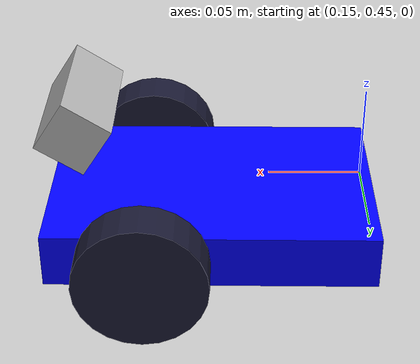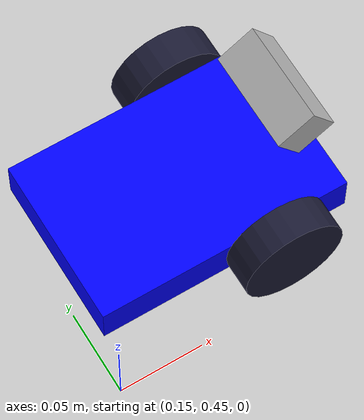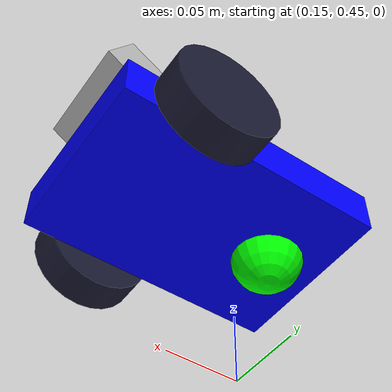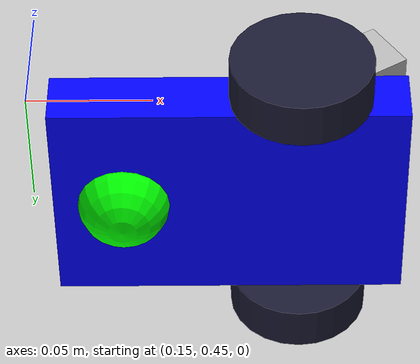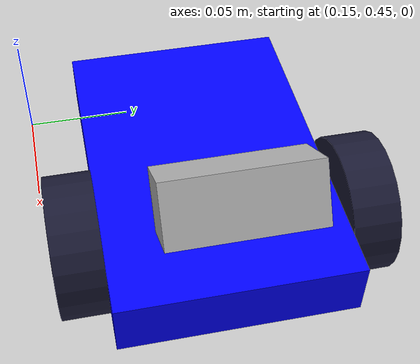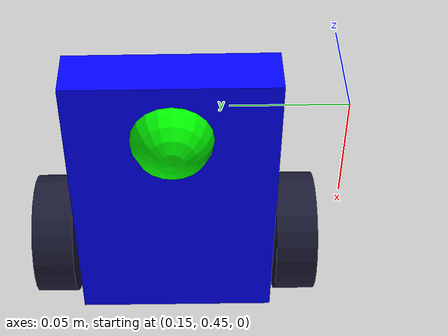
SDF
<?xml version="1.0" ?>
<sdf version="1.7">
    <model name='argus_v2' canonical_link='chassis'>
        <pose relative_to='world'>0.23 0.525 0.03 0 0 0</pose>
        <link name='chassis'>
            <pose relative_to='__model__'>0 0 0 0 0 0</pose>
            <inertial> <!--inertial properties of the link mass, inertia matix-->
                <mass>0.3</mass>
                <inertia>
                    <ixx>0.00025</ixx>
                    <ixy>0</ixy>
                    <ixz>0</ixz>
                    <iyy>0.000562</iyy>
                    <iyz>0</iyz>
                    <izz>0.000812</izz>
                </inertia>
            </inertial>
            <visual name='visual'>
                <geometry>
                    <box>
                        <size>0.15 0.1 0.025</size>
                    </box>
                </geometry>
                <!--let's add color to our link-->
                <material>
                    <ambient>0.0 0.0 1.0 1</ambient>
                    <diffuse>0.0 0.0 1.0 1</diffuse>
                    <specular>0.0 0.0 1.0 1</specular>
                </material>
            </visual>
            <collision name='collision'>
                <geometry>
                    <box>
                        <size>0.15 0.1 0.025</size>
                    </box>
                </geometry>
            </collision>
        </link>
        <link name='left_wheel'>
            <pose relative_to="chassis">0.03 0.06 0 -1.5707 0 0</pose>
            <inertial>
                <mass>0.05</mass>
                <inertia>
                    <ixx>0.000033</ixx>
                    <ixy>0</ixy>
                    <ixz>0</ixz>
                    <iyy>0.000033</iyy>
                    <iyz>0</iyz>
                    <izz>0.000062</izz>
                </inertia>
            </inertial>
            <visual name='visual'>
                <geometry>
                    <cylinder>
                        <radius>0.03</radius>
                        <length>0.02</length>
                    </cylinder>
                </geometry>
                <material> <!-- Wheel material -->
                    <ambient>0.1 0.1 0.1 1</ambient>
                    <diffuse>0.1 0.1 0.2 1</diffuse>
                    <specular>0 0 0 0</specular>
                    <emissive>0 0 0 1</emissive>
                </material> <!-- End wheel material -->
            </visual>
            <collision name='collision'>
                <geometry>
                    <cylinder>
                        <radius>0.03</radius>
                        <length>0.02</length>
                    </cylinder>
                </geometry>
            </collision>
        </link>
        <!--The same as left wheel but with different position-->
        <link name='right_wheel'>
            <pose relative_to="chassis">0.03 -0.06 0 -1.5707 0 0</pose> <!--angles are in radian-->
            <inertial>
                <mass>0.05</mass>
                <inertia>
                    <ixx>0.000033</ixx>
                    <ixy>0</ixy>
                    <ixz>0</ixz>
                    <iyy>0.000033</iyy>
                    <iyz>0</iyz>
                    <izz>0.000062</izz>
                </inertia>
            </inertial>
            <visual name='visual'>
                <geometry>
                    <cylinder>
                        <radius>0.03</radius>
                        <length>0.02</length>
                    </cylinder>
                </geometry>
                <material> <!-- Wheel material -->
                    <ambient>0.1 0.1 0.1 1</ambient>
                    <diffuse>0.1 0.1 0.2 1</diffuse>
                    <specular>0 0 0 0</specular>
                    <emissive>0 0 0 1</emissive>
                </material> <!-- End wheel material -->
            </visual>
            <collision name='collision'>
                <geometry>
                    <cylinder>
                        <radius>0.03</radius>
                        <length>0.02</length>
                    </cylinder>
                </geometry>
            </collision>
        </link>
        <!--caster wheel-->
        <frame name="caster_frame" attached_to='chassis'>
            <pose>-0.045 0 -0.01 0 0 0</pose>
        </frame>

        <link name='caster'>
            <pose relative_to='caster_frame'/>
            <inertial>
                <mass>0.02</mass>
                <inertia>
                    <ixx>0.00016</ixx>
                    <ixy>0</ixy>
                    <ixz>0</ixz>
                    <iyy>0.00016</iyy>
                    <iyz>0</iyz>
                    <izz>0.00016</izz>
                </inertia>
            </inertial>
            <visual name='visual'>
                <geometry>
                    <sphere>
                        <radius>0.02</radius>
                    </sphere>
                </geometry>
                <material>
                    <ambient>0.0 1 0.0 1</ambient>
                    <diffuse>0.0 1 0.0 1 1</diffuse>
                    <specular>0.0 1 0.0 1</specular>
                </material>
            </visual>
            <collision name='collision'>
                <geometry>
                    <sphere>
                        <radius>0.02</radius>
                    </sphere>
                </geometry>
            </collision>
        </link>
        <!--Camera-->
        <frame name="camera_frame" attached_to='chassis'>
            <pose>0.06 0 0.05 0 0 0</pose>
        </frame>
        <link name="camera">
            <pose relative_to="camera_frame">0 0 0 0 1.0 0</pose> <!--angles are in radian-->
            <inertial>
                <mass>0.05</mass>
                <inertia>
                    <ixx>0.0000166667</ixx>
                    <iyy>0.0000166667</iyy>
                    <izz>0.0000166667</izz>
                </inertia>
            </inertial>
            <collision name="collision">
                <geometry>
                    <box>
                        <size>0.025 0.06 0.025</size>
                    </box>
                </geometry>
            </collision>
            <visual name="visual">
                <geometry>
                    <box>
                        <size>0.025 0.06 0.025</size>
                    </box>
                </geometry>
            </visual>
            <sensor name="camera" type="camera">
                <update_rate>15</update_rate>
                <camera>
                    <horizontal_fov>1.919</horizontal_fov>
                    <image>
                        <width>864</width>
                        <height>480</height>
                    </image>
                    <clip>
                        <near>0.1</near>
                        <far>50</far>
                    </clip>
                </camera>
                <always_on>1</always_on>
                <update_rate>30</update_rate>
                <visualize>true</visualize>
                <topic>argus/frame_pub/cam_frame</topic>
            </sensor>
        </link>
        <!--adding joints-->
        <joint name='camera_joint' type='revolute'>
            <pose relative_to='camera_frame'/>
            <parent>chassis</parent>
            <child>camera</child>
            <axis>
                <xyz expressed_in='__model__'>0 1 0</xyz> <!--can be defined as any frame or even arbitrary frames-->
                <limit>
                    <lower>-1.5</lower>    <!--negative infinity-->
                    <upper>0.1</upper>     <!--positive infinity-->
                </limit>
            </axis>
        </joint>

        <joint name='left_wheel_joint' type='revolute'>
            <pose relative_to='left_wheel'/>
            <parent>chassis</parent>
            <child>left_wheel</child>
            <axis>
                <xyz expressed_in='__model__'>0 1 0</xyz> <!--can be defined as any frame or even arbitrary frames-->
                <limit>
                    <lower>-1.79769e+308</lower>    <!--negative infinity-->
                    <upper>1.79769e+308</upper>     <!--positive infinity-->
                </limit>
            </axis>
        </joint>
        <joint name='right_wheel_joint' type='revolute'>
            <pose relative_to='right_wheel'/>
            <parent>chassis</parent>
            <child>right_wheel</child>
            <axis>
                <xyz expressed_in='__model__'>0 1 0</xyz>
                <limit>
                    <lower>-1.79769e+308</lower>    <!--negative infinity-->
                    <upper>1.79769e+308</upper>     <!--positive infinity-->
                </limit>
            </axis>
        </joint>
        <joint name='caster_wheel' type='ball'>
            <parent>chassis</parent>
            <child>caster</child>
        </joint>
        <!--Adding plugins-->
        <plugin
            filename="ignition-gazebo-sensors-system"
            name="ignition::gazebo::systems::Sensors">
        </plugin>
        <plugin
            filename="libignition-gazebo-diff-drive-system.so"
            name="ignition::gazebo::systems::DiffDrive">
            <left_joint>left_wheel_joint</left_joint>
            <right_joint>right_wheel_joint</right_joint>
            <wheel_separation>0.11</wheel_separation>
            <wheel_radius>0.03</wheel_radius>
            <!-- output -->
            <topic>argus/cmd_vel</topic>
            <odom_publish_frequency>1</odom_publish_frequency>
            <tf_topic>argus_v2/tf</tf_topic>
            <odom_topic>argus/odometry</odom_topic>
        </plugin>
        <plugin
            filename="libignition-gazebo-joint-position-controller-system.so"
            name="ignition::gazebo::systems::JointPositionController">
            <topic>argus/camera/cmd_pos</topic>
            <joint_name>camera_joint</joint_name>
            <cmd_max>3.14</cmd_max>
            <cmd_min>-3.14</cmd_min>
            <p_gain>0.01</p_gain>
            <i_gain>0.0001</i_gain>
            <d_gain>0.001</d_gain>
            <!-- output -->
        </plugin>
    </model>
</sdf>
